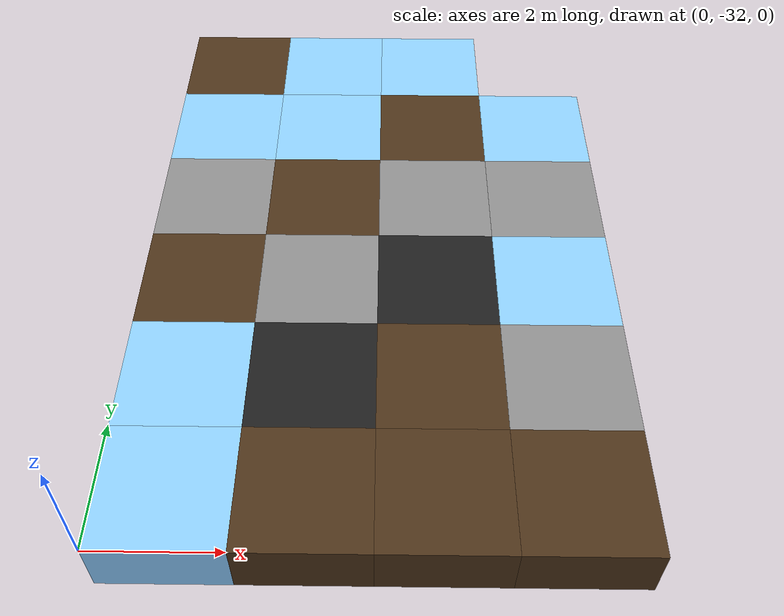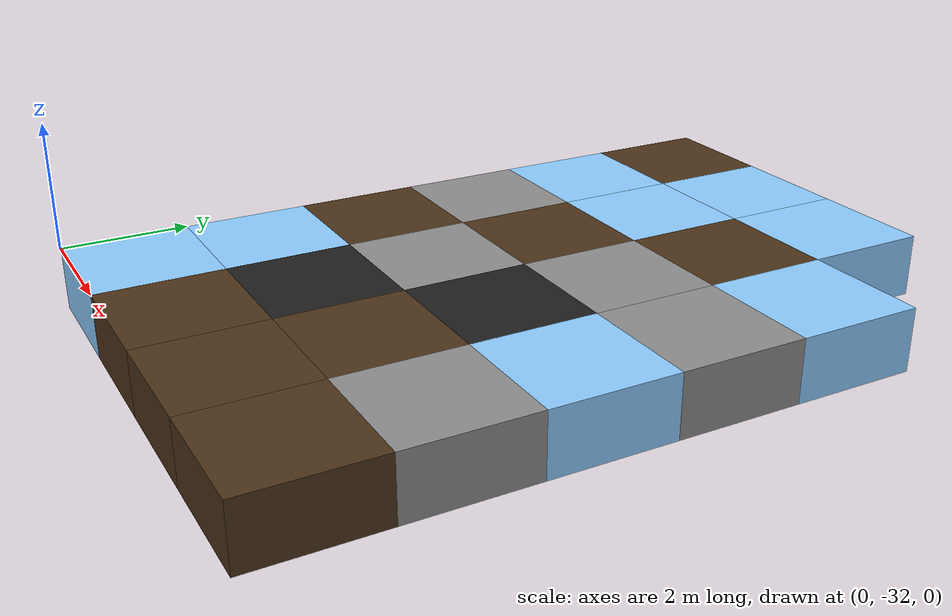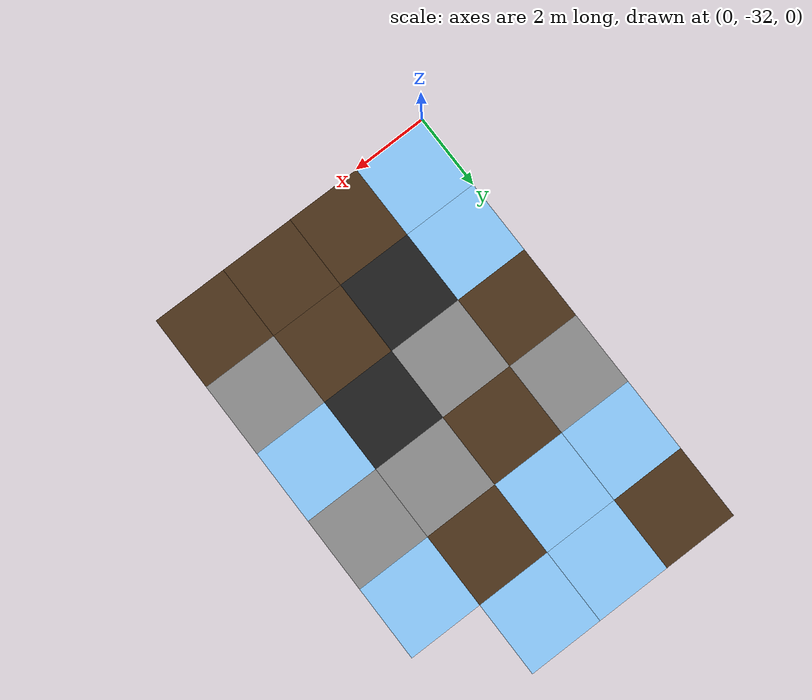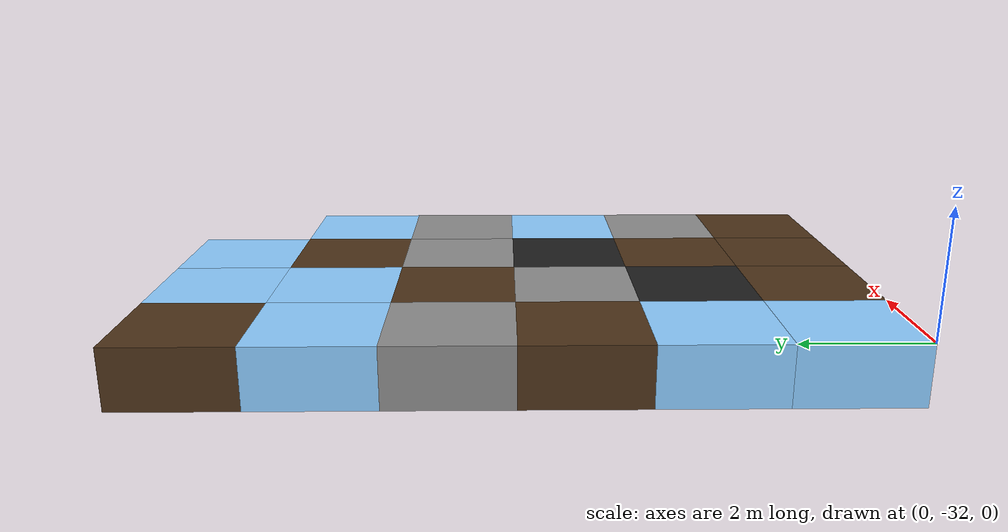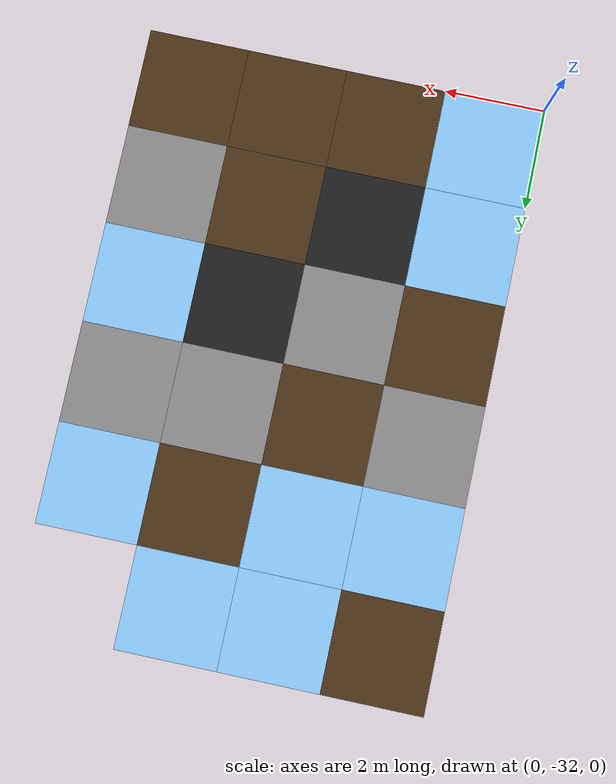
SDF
<sdf version="1.5">
 <world name="squares_example">
  <model name="tile_16_0">
   <static>true</static>
   <pose>1.000 -31.000 -0.500 0 0 0</pose>
   <link name="link">
    <collision name="col">
     <geometry><box><size>2.0 2.0 1.0</size></box></geometry>
     <surface>
      <friction>
       <ode><mu>0.03</mu><mu2>0.02</mu2><fdir1>1 0 0</fdir1><slip1>0.03</slip1><slip2>0.03</slip2></ode>
       <torsional>
        <coefficient>0.005</coefficient>
        <use_patch_radius>false</use_patch_radius>
        <surface_radius>0.12</surface_radius>
        <ode><slip>0.01</slip></ode>
       </torsional>
      </friction>
      <bounce><restitution_coefficient>0.0</restitution_coefficient><threshold>0.1</threshold></bounce>
      <contact>
       <ode><kp>10000000.0</kp><kd>1000.0</kd><max_vel>0.01</max_vel><min_depth>0.0</min_depth></ode>
      </contact>
     </surface>
    </collision>
    <visual name="visual">
     <geometry><box><size>2.0 2.0 1.0</size></box></geometry>
     <material>
      <diffuse>0.55 0.80 1.00 1</diffuse>
      <ambient>0 0 0 0</ambient>
      <specular>0 0 0 1</specular>
      <emissive>0 0 0 1</emissive>
     </material>
    </visual>
   </link>
  </model>
  <model name="tile_17_0">
   <static>true</static>
   <pose>3.000 -31.000 -0.500 0 0 0</pose>
   <link name="link">
    <collision name="col">
     <geometry><box><size>2.0 2.0 1.0</size></box></geometry>
     <surface>
      <friction>
       <ode><mu>0.6</mu><mu2>0.4</mu2><fdir1>1 0 0</fdir1><slip1>0.08</slip1><slip2>0.08</slip2></ode>
       <torsional>
        <coefficient>0.03</coefficient>
        <use_patch_radius>false</use_patch_radius>
        <surface_radius>0.12</surface_radius>
        <ode><slip>0.0</slip></ode>
       </torsional>
      </friction>
      <bounce><restitution_coefficient>0.0</restitution_coefficient><threshold>0.1</threshold></bounce>
      <contact>
       <ode><kp>1000000.0</kp><kd>10000.0</kd><max_vel>0.01</max_vel><min_depth>0.0</min_depth></ode>
      </contact>
     </surface>
    </collision>
    <visual name="visual">
     <geometry><box><size>2.0 2.0 1.0</size></box></geometry>
     <material>
      <diffuse>0.30 0.20 0.10 1</diffuse>
      <ambient>0 0 0 0</ambient>
      <specular>0 0 0 1</specular>
      <emissive>0 0 0 1</emissive>
     </material>
    </visual>
   </link>
  </model>
  <model name="tile_18_0">
   <static>true</static>
   <pose>5.000 -31.000 -0.500 0 0 0</pose>
   <link name="link">
    <collision name="col">
     <geometry><box><size>2.0 2.0 1.0</size></box></geometry>
     <surface>
      <friction>
       <ode><mu>0.6</mu><mu2>0.4</mu2><fdir1>1 0 0</fdir1><slip1>0.08</slip1><slip2>0.08</slip2></ode>
       <torsional>
        <coefficient>0.03</coefficient>
        <use_patch_radius>false</use_patch_radius>
        <surface_radius>0.12</surface_radius>
        <ode><slip>0.0</slip></ode>
       </torsional>
      </friction>
      <bounce><restitution_coefficient>0.0</restitution_coefficient><threshold>0.1</threshold></bounce>
      <contact>
       <ode><kp>1000000.0</kp><kd>10000.0</kd><max_vel>0.01</max_vel><min_depth>0.0</min_depth></ode>
      </contact>
     </surface>
    </collision>
    <visual name="visual">
     <geometry><box><size>2.0 2.0 1.0</size></box></geometry>
     <material>
      <diffuse>0.30 0.20 0.10 1</diffuse>
      <ambient>0 0 0 0</ambient>
      <specular>0 0 0 1</specular>
      <emissive>0 0 0 1</emissive>
     </material>
    </visual>
   </link>
  </model>
  <model name="tile_19_0">
   <static>true</static>
   <pose>7.000 -31.000 -0.500 0 0 0</pose>
   <link name="link">
    <collision name="col">
     <geometry><box><size>2.0 2.0 1.0</size></box></geometry>
     <surface>
      <friction>
       <ode><mu>0.6</mu><mu2>0.4</mu2><fdir1>1 0 0</fdir1><slip1>0.08</slip1><slip2>0.08</slip2></ode>
       <torsional>
        <coefficient>0.03</coefficient>
        <use_patch_radius>false</use_patch_radius>
        <surface_radius>0.12</surface_radius>
        <ode><slip>0.0</slip></ode>
       </torsional>
      </friction>
      <bounce><restitution_coefficient>0.0</restitution_coefficient><threshold>0.1</threshold></bounce>
      <contact>
       <ode><kp>1000000.0</kp><kd>10000.0</kd><max_vel>0.01</max_vel><min_depth>0.0</min_depth></ode>
      </contact>
     </surface>
    </collision>
    <visual name="visual">
     <geometry><box><size>2.0 2.0 1.0</size></box></geometry>
     <material>
      <diffuse>0.30 0.20 0.10 1</diffuse>
      <ambient>0 0 0 0</ambient>
      <specular>0 0 0 1</specular>
      <emissive>0 0 0 1</emissive>
     </material>
    </visual>
   </link>
  </model>
  <model name="tile_16_1">
   <static>true</static>
   <pose>1.000 -29.000 -0.500 0 0 0</pose>
   <link name="link">
    <collision name="col">
     <geometry><box><size>2.0 2.0 1.0</size></box></geometry>
     <surface>
      <friction>
       <ode><mu>0.03</mu><mu2>0.02</mu2><fdir1>1 0 0</fdir1><slip1>0.03</slip1><slip2>0.03</slip2></ode>
       <torsional>
        <coefficient>0.005</coefficient>
        <use_patch_radius>false</use_patch_radius>
        <surface_radius>0.12</surface_radius>
        <ode><slip>0.01</slip></ode>
       </torsional>
      </friction>
      <bounce><restitution_coefficient>0.0</restitution_coefficient><threshold>0.1</threshold></bounce>
      <contact>
       <ode><kp>10000000.0</kp><kd>1000.0</kd><max_vel>0.01</max_vel><min_depth>0.0</min_depth></ode>
      </contact>
     </surface>
    </collision>
    <visual name="visual">
     <geometry><box><size>2.0 2.0 1.0</size></box></geometry>
     <material>
      <diffuse>0.55 0.80 1.00 1</diffuse>
      <ambient>0 0 0 0</ambient>
      <specular>0 0 0 1</specular>
      <emissive>0 0 0 1</emissive>
     </material>
    </visual>
   </link>
  </model>
  <model name="tile_17_1">
   <static>true</static>
   <pose>3.000 -29.000 -0.500 0 0 0</pose>
   <link name="link">
    <collision name="col">
     <geometry><box><size>2.0 2.0 1.0</size></box></geometry>
     <surface>
      <friction>
       <ode><mu>0.4</mu><mu2>0.15</mu2><fdir1>1 0 0</fdir1><slip1>0.0</slip1><slip2>0.0</slip2></ode>
       <torsional>
        <coefficient>0.03</coefficient>
        <use_patch_radius>false</use_patch_radius>
        <surface_radius>0.12</surface_radius>
        <ode><slip>0.0</slip></ode>
       </torsional>
      </friction>
      <bounce><restitution_coefficient>0.0</restitution_coefficient><threshold>0.1</threshold></bounce>
      <contact>
       <ode><kp>1000000000.0</kp><kd>1000000.0</kd><max_vel>0.01</max_vel><min_depth>0.0</min_depth></ode>
      </contact>
     </surface>
    </collision>
    <visual name="visual">
     <geometry><box><size>2.0 2.0 1.0</size></box></geometry>
     <material>
      <diffuse>0.12 0.12 0.12 1</diffuse>
      <ambient>0 0 0 0</ambient>
      <specular>0 0 0 1</specular>
      <emissive>0 0 0 1</emissive>
     </material>
    </visual>
   </link>
  </model>
  <model name="tile_18_1">
   <static>true</static>
   <pose>5.000 -29.000 -0.500 0 0 0</pose>
   <link name="link">
    <collision name="col">
     <geometry><box><size>2.0 2.0 1.0</size></box></geometry>
     <surface>
      <friction>
       <ode><mu>0.6</mu><mu2>0.4</mu2><fdir1>1 0 0</fdir1><slip1>0.08</slip1><slip2>0.08</slip2></ode>
       <torsional>
        <coefficient>0.03</coefficient>
        <use_patch_radius>false</use_patch_radius>
        <surface_radius>0.12</surface_radius>
        <ode><slip>0.0</slip></ode>
       </torsional>
      </friction>
      <bounce><restitution_coefficient>0.0</restitution_coefficient><threshold>0.1</threshold></bounce>
      <contact>
       <ode><kp>1000000.0</kp><kd>10000.0</kd><max_vel>0.01</max_vel><min_depth>0.0</min_depth></ode>
      </contact>
     </surface>
    </collision>
    <visual name="visual">
     <geometry><box><size>2.0 2.0 1.0</size></box></geometry>
     <material>
      <diffuse>0.30 0.20 0.10 1</diffuse>
      <ambient>0 0 0 0</ambient>
      <specular>0 0 0 1</specular>
      <emissive>0 0 0 1</emissive>
     </material>
    </visual>
   </link>
  </model>
  <model name="tile_19_1">
   <static>true</static>
   <pose>7.000 -29.000 -0.500 0 0 0</pose>
   <link name="link">
    <collision name="col">
     <geometry><box><size>2.0 2.0 1.0</size></box></geometry>
     <surface>
      <friction>
       <ode><mu>0.8</mu><mu2>0.3</mu2><fdir1>1 0 0</fdir1><slip1>0.0</slip1><slip2>0.0</slip2></ode>
       <torsional>
        <coefficient>0.03</coefficient>
        <use_patch_radius>false</use_patch_radius>
        <surface_radius>0.12</surface_radius>
        <ode><slip>0.0</slip></ode>
       </torsional>
      </friction>
      <bounce><restitution_coefficient>0.0</restitution_coefficient><threshold>0.1</threshold></bounce>
      <contact>
       <ode><kp>10000000000.0</kp><kd>10000000.0</kd><max_vel>0.01</max_vel><min_depth>0.0</min_depth></ode>
      </contact>
     </surface>
    </collision>
    <visual name="visual">
     <geometry><box><size>2.0 2.0 1.0</size></box></geometry>
     <material>
      <diffuse>0.55 0.55 0.55 1</diffuse>
      <ambient>0 0 0 0</ambient>
      <specular>0 0 0 1</specular>
      <emissive>0 0 0 1</emissive>
     </material>
    </visual>
   </link>
  </model>
  <model name="tile_16_2">
   <static>true</static>
   <pose>1.000 -27.000 -0.500 0 0 0</pose>
   <link name="link">
    <collision name="col">
     <geometry><box><size>2.0 2.0 1.0</size></box></geometry>
     <surface>
      <friction>
       <ode><mu>0.6</mu><mu2>0.4</mu2><fdir1>1 0 0</fdir1><slip1>0.08</slip1><slip2>0.08</slip2></ode>
       <torsional>
        <coefficient>0.03</coefficient>
        <use_patch_radius>false</use_patch_radius>
        <surface_radius>0.12</surface_radius>
        <ode><slip>0.0</slip></ode>
       </torsional>
      </friction>
      <bounce><restitution_coefficient>0.0</restitution_coefficient><threshold>0.1</threshold></bounce>
      <contact>
       <ode><kp>1000000.0</kp><kd>10000.0</kd><max_vel>0.01</max_vel><min_depth>0.0</min_depth></ode>
      </contact>
     </surface>
    </collision>
    <visual name="visual">
     <geometry><box><size>2.0 2.0 1.0</size></box></geometry>
     <material>
      <diffuse>0.30 0.20 0.10 1</diffuse>
      <ambient>0 0 0 0</ambient>
      <specular>0 0 0 1</specular>
      <emissive>0 0 0 1</emissive>
     </material>
    </visual>
   </link>
  </model>
  <model name="tile_17_2">
   <static>true</static>
   <pose>3.000 -27.000 -0.500 0 0 0</pose>
   <link name="link">
    <collision name="col">
     <geometry><box><size>2.0 2.0 1.0</size></box></geometry>
     <surface>
      <friction>
       <ode><mu>0.8</mu><mu2>0.3</mu2><fdir1>1 0 0</fdir1><slip1>0.0</slip1><slip2>0.0</slip2></ode>
       <torsional>
        <coefficient>0.03</coefficient>
        <use_patch_radius>false</use_patch_radius>
        <surface_radius>0.12</surface_radius>
        <ode><slip>0.0</slip></ode>
       </torsional>
      </friction>
      <bounce><restitution_coefficient>0.0</restitution_coefficient><threshold>0.1</threshold></bounce>
      <contact>
       <ode><kp>10000000000.0</kp><kd>10000000.0</kd><max_vel>0.01</max_vel><min_depth>0.0</min_depth></ode>
      </contact>
     </surface>
    </collision>
    <visual name="visual">
     <geometry><box><size>2.0 2.0 1.0</size></box></geometry>
     <material>
      <diffuse>0.55 0.55 0.55 1</diffuse>
      <ambient>0 0 0 0</ambient>
      <specular>0 0 0 1</specular>
      <emissive>0 0 0 1</emissive>
     </material>
    </visual>
   </link>
  </model>
  <model name="tile_18_2">
   <static>true</static>
   <pose>5.000 -27.000 -0.500 0 0 0</pose>
   <link name="link">
    <collision name="col">
     <geometry><box><size>2.0 2.0 1.0</size></box></geometry>
     <surface>
      <friction>
       <ode><mu>0.4</mu><mu2>0.15</mu2><fdir1>1 0 0</fdir1><slip1>0.0</slip1><slip2>0.0</slip2></ode>
       <torsional>
        <coefficient>0.03</coefficient>
        <use_patch_radius>false</use_patch_radius>
        <surface_radius>0.12</surface_radius>
        <ode><slip>0.0</slip></ode>
       </torsional>
      </friction>
      <bounce><restitution_coefficient>0.0</restitution_coefficient><threshold>0.1</threshold></bounce>
      <contact>
       <ode><kp>1000000000.0</kp><kd>1000000.0</kd><max_vel>0.01</max_vel><min_depth>0.0</min_depth></ode>
      </contact>
     </surface>
    </collision>
    <visual name="visual">
     <geometry><box><size>2.0 2.0 1.0</size></box></geometry>
     <material>
      <diffuse>0.12 0.12 0.12 1</diffuse>
      <ambient>0 0 0 0</ambient>
      <specular>0 0 0 1</specular>
      <emissive>0 0 0 1</emissive>
     </material>
    </visual>
   </link>
  </model>
  <model name="tile_19_2">
   <static>true</static>
   <pose>7.000 -27.000 -0.500 0 0 0</pose>
   <link name="link">
    <collision name="col">
     <geometry><box><size>2.0 2.0 1.0</size></box></geometry>
     <surface>
      <friction>
       <ode><mu>0.03</mu><mu2>0.02</mu2><fdir1>1 0 0</fdir1><slip1>0.03</slip1><slip2>0.03</slip2></ode>
       <torsional>
        <coefficient>0.005</coefficient>
        <use_patch_radius>false</use_patch_radius>
        <surface_radius>0.12</surface_radius>
        <ode><slip>0.01</slip></ode>
       </torsional>
      </friction>
      <bounce><restitution_coefficient>0.0</restitution_coefficient><threshold>0.1</threshold></bounce>
      <contact>
       <ode><kp>10000000.0</kp><kd>1000.0</kd><max_vel>0.01</max_vel><min_depth>0.0</min_depth></ode>
      </contact>
     </surface>
    </collision>
    <visual name="visual">
     <geometry><box><size>2.0 2.0 1.0</size></box></geometry>
     <material>
      <diffuse>0.55 0.80 1.00 1</diffuse>
      <ambient>0 0 0 0</ambient>
      <specular>0 0 0 1</specular>
      <emissive>0 0 0 1</emissive>
     </material>
    </visual>
   </link>
  </model>
  <model name="tile_16_3">
   <static>true</static>
   <pose>1.000 -25.000 -0.500 0 0 0</pose>
   <link name="link">
    <collision name="col">
     <geometry><box><size>2.0 2.0 1.0</size></box></geometry>
     <surface>
      <friction>
       <ode><mu>0.8</mu><mu2>0.3</mu2><fdir1>1 0 0</fdir1><slip1>0.0</slip1><slip2>0.0</slip2></ode>
       <torsional>
        <coefficient>0.03</coefficient>
        <use_patch_radius>false</use_patch_radius>
        <surface_radius>0.12</surface_radius>
        <ode><slip>0.0</slip></ode>
       </torsional>
      </friction>
      <bounce><restitution_coefficient>0.0</restitution_coefficient><threshold>0.1</threshold></bounce>
      <contact>
       <ode><kp>10000000000.0</kp><kd>10000000.0</kd><max_vel>0.01</max_vel><min_depth>0.0</min_depth></ode>
      </contact>
     </surface>
    </collision>
    <visual name="visual">
     <geometry><box><size>2.0 2.0 1.0</size></box></geometry>
     <material>
      <diffuse>0.55 0.55 0.55 1</diffuse>
      <ambient>0 0 0 0</ambient>
      <specular>0 0 0 1</specular>
      <emissive>0 0 0 1</emissive>
     </material>
    </visual>
   </link>
  </model>
  <model name="tile_17_3">
   <static>true</static>
   <pose>3.000 -25.000 -0.500 0 0 0</pose>
   <link name="link">
    <collision name="col">
     <geometry><box><size>2.0 2.0 1.0</size></box></geometry>
     <surface>
      <friction>
       <ode><mu>0.6</mu><mu2>0.4</mu2><fdir1>1 0 0</fdir1><slip1>0.08</slip1><slip2>0.08</slip2></ode>
       <torsional>
        <coefficient>0.03</coefficient>
        <use_patch_radius>false</use_patch_radius>
        <surface_radius>0.12</surface_radius>
        <ode><slip>0.0</slip></ode>
       </torsional>
      </friction>
      <bounce><restitution_coefficient>0.0</restitution_coefficient><threshold>0.1</threshold></bounce>
      <contact>
       <ode><kp>1000000.0</kp><kd>10000.0</kd><max_vel>0.01</max_vel><min_depth>0.0</min_depth></ode>
      </contact>
     </surface>
    </collision>
    <visual name="visual">
     <geometry><box><size>2.0 2.0 1.0</size></box></geometry>
     <material>
      <diffuse>0.30 0.20 0.10 1</diffuse>
      <ambient>0 0 0 0</ambient>
      <specular>0 0 0 1</specular>
      <emissive>0 0 0 1</emissive>
     </material>
    </visual>
   </link>
  </model>
  <model name="tile_18_3">
   <static>true</static>
   <pose>5.000 -25.000 -0.500 0 0 0</pose>
   <link name="link">
    <collision name="col">
     <geometry><box><size>2.0 2.0 1.0</size></box></geometry>
     <surface>
      <friction>
       <ode><mu>0.8</mu><mu2>0.3</mu2><fdir1>1 0 0</fdir1><slip1>0.0</slip1><slip2>0.0</slip2></ode>
       <torsional>
        <coefficient>0.03</coefficient>
        <use_patch_radius>false</use_patch_radius>
        <surface_radius>0.12</surface_radius>
        <ode><slip>0.0</slip></ode>
       </torsional>
      </friction>
      <bounce><restitution_coefficient>0.0</restitution_coefficient><threshold>0.1</threshold></bounce>
      <contact>
       <ode><kp>10000000000.0</kp><kd>10000000.0</kd><max_vel>0.01</max_vel><min_depth>0.0</min_depth></ode>
      </contact>
     </surface>
    </collision>
    <visual name="visual">
     <geometry><box><size>2.0 2.0 1.0</size></box></geometry>
     <material>
      <diffuse>0.55 0.55 0.55 1</diffuse>
      <ambient>0 0 0 0</ambient>
      <specular>0 0 0 1</specular>
      <emissive>0 0 0 1</emissive>
     </material>
    </visual>
   </link>
  </model>
  <model name="tile_19_3">
   <static>true</static>
   <pose>7.000 -25.000 -0.500 0 0 0</pose>
   <link name="link">
    <collision name="col">
     <geometry><box><size>2.0 2.0 1.0</size></box></geometry>
     <surface>
      <friction>
       <ode><mu>0.8</mu><mu2>0.3</mu2><fdir1>1 0 0</fdir1><slip1>0.0</slip1><slip2>0.0</slip2></ode>
       <torsional>
        <coefficient>0.03</coefficient>
        <use_patch_radius>false</use_patch_radius>
        <surface_radius>0.12</surface_radius>
        <ode><slip>0.0</slip></ode>
       </torsional>
      </friction>
      <bounce><restitution_coefficient>0.0</restitution_coefficient><threshold>0.1</threshold></bounce>
      <contact>
       <ode><kp>10000000000.0</kp><kd>10000000.0</kd><max_vel>0.01</max_vel><min_depth>0.0</min_depth></ode>
      </contact>
     </surface>
    </collision>
    <visual name="visual">
     <geometry><box><size>2.0 2.0 1.0</size></box></geometry>
     <material>
      <diffuse>0.55 0.55 0.55 1</diffuse>
      <ambient>0 0 0 0</ambient>
      <specular>0 0 0 1</specular>
      <emissive>0 0 0 1</emissive>
     </material>
    </visual>
   </link>
  </model>
  <model name="tile_16_4">
   <static>true</static>
   <pose>1.000 -23.000 -0.500 0 0 0</pose>
   <link name="link">
    <collision name="col">
     <geometry><box><size>2.0 2.0 1.0</size></box></geometry>
     <surface>
      <friction>
       <ode><mu>0.03</mu><mu2>0.02</mu2><fdir1>1 0 0</fdir1><slip1>0.03</slip1><slip2>0.03</slip2></ode>
       <torsional>
        <coefficient>0.005</coefficient>
        <use_patch_radius>false</use_patch_radius>
        <surface_radius>0.12</surface_radius>
        <ode><slip>0.01</slip></ode>
       </torsional>
      </friction>
      <bounce><restitution_coefficient>0.0</restitution_coefficient><threshold>0.1</threshold></bounce>
      <contact>
       <ode><kp>10000000.0</kp><kd>1000.0</kd><max_vel>0.01</max_vel><min_depth>0.0</min_depth></ode>
      </contact>
     </surface>
    </collision>
    <visual name="visual">
     <geometry><box><size>2.0 2.0 1.0</size></box></geometry>
     <material>
      <diffuse>0.55 0.80 1.00 1</diffuse>
      <ambient>0 0 0 0</ambient>
      <specular>0 0 0 1</specular>
      <emissive>0 0 0 1</emissive>
     </material>
    </visual>
   </link>
  </model>
  <model name="tile_17_4">
   <static>true</static>
   <pose>3.000 -23.000 -0.500 0 0 0</pose>
   <link name="link">
    <collision name="col">
     <geometry><box><size>2.0 2.0 1.0</size></box></geometry>
     <surface>
      <friction>
       <ode><mu>0.03</mu><mu2>0.02</mu2><fdir1>1 0 0</fdir1><slip1>0.03</slip1><slip2>0.03</slip2></ode>
       <torsional>
        <coefficient>0.005</coefficient>
        <use_patch_radius>false</use_patch_radius>
        <surface_radius>0.12</surface_radius>
        <ode><slip>0.01</slip></ode>
       </torsional>
      </friction>
      <bounce><restitution_coefficient>0.0</restitution_coefficient><threshold>0.1</threshold></bounce>
      <contact>
       <ode><kp>10000000.0</kp><kd>1000.0</kd><max_vel>0.01</max_vel><min_depth>0.0</min_depth></ode>
      </contact>
     </surface>
    </collision>
    <visual name="visual">
     <geometry><box><size>2.0 2.0 1.0</size></box></geometry>
     <material>
      <diffuse>0.55 0.80 1.00 1</diffuse>
      <ambient>0 0 0 0</ambient>
      <specular>0 0 0 1</specular>
      <emissive>0 0 0 1</emissive>
     </material>
    </visual>
   </link>
  </model>
  <model name="tile_18_4">
   <static>true</static>
   <pose>5.000 -23.000 -0.500 0 0 0</pose>
   <link name="link">
    <collision name="col">
     <geometry><box><size>2.0 2.0 1.0</size></box></geometry>
     <surface>
      <friction>
       <ode><mu>0.6</mu><mu2>0.4</mu2><fdir1>1 0 0</fdir1><slip1>0.08</slip1><slip2>0.08</slip2></ode>
       <torsional>
        <coefficient>0.03</coefficient>
        <use_patch_radius>false</use_patch_radius>
        <surface_radius>0.12</surface_radius>
        <ode><slip>0.0</slip></ode>
       </torsional>
      </friction>
      <bounce><restitution_coefficient>0.0</restitution_coefficient><threshold>0.1</threshold></bounce>
      <contact>
       <ode><kp>1000000.0</kp><kd>10000.0</kd><max_vel>0.01</max_vel><min_depth>0.0</min_depth></ode>
      </contact>
     </surface>
    </collision>
    <visual name="visual">
     <geometry><box><size>2.0 2.0 1.0</size></box></geometry>
     <material>
      <diffuse>0.30 0.20 0.10 1</diffuse>
      <ambient>0 0 0 0</ambient>
      <specular>0 0 0 1</specular>
      <emissive>0 0 0 1</emissive>
     </material>
    </visual>
   </link>
  </model>
  <model name="tile_19_4">
   <static>true</static>
   <pose>7.000 -23.000 -0.500 0 0 0</pose>
   <link name="link">
    <collision name="col">
     <geometry><box><size>2.0 2.0 1.0</size></box></geometry>
     <surface>
      <friction>
       <ode><mu>0.03</mu><mu2>0.02</mu2><fdir1>1 0 0</fdir1><slip1>0.03</slip1><slip2>0.03</slip2></ode>
       <torsional>
        <coefficient>0.005</coefficient>
        <use_patch_radius>false</use_patch_radius>
        <surface_radius>0.12</surface_radius>
        <ode><slip>0.01</slip></ode>
       </torsional>
      </friction>
      <bounce><restitution_coefficient>0.0</restitution_coefficient><threshold>0.1</threshold></bounce>
      <contact>
       <ode><kp>10000000.0</kp><kd>1000.0</kd><max_vel>0.01</max_vel><min_depth>0.0</min_depth></ode>
      </contact>
     </surface>
    </collision>
    <visual name="visual">
     <geometry><box><size>2.0 2.0 1.0</size></box></geometry>
     <material>
      <diffuse>0.55 0.80 1.00 1</diffuse>
      <ambient>0 0 0 0</ambient>
      <specular>0 0 0 1</specular>
      <emissive>0 0 0 1</emissive>
     </material>
    </visual>
   </link>
  </model>
  <model name="tile_16_5">
   <static>true</static>
   <pose>1.000 -21.000 -0.500 0 0 0</pose>
   <link name="link">
    <collision name="col">
     <geometry><box><size>2.0 2.0 1.0</size></box></geometry>
     <surface>
      <friction>
       <ode><mu>0.6</mu><mu2>0.4</mu2><fdir1>1 0 0</fdir1><slip1>0.08</slip1><slip2>0.08</slip2></ode>
       <torsional>
        <coefficient>0.03</coefficient>
        <use_patch_radius>false</use_patch_radius>
        <surface_radius>0.12</surface_radius>
        <ode><slip>0.0</slip></ode>
       </torsional>
      </friction>
      <bounce><restitution_coefficient>0.0</restitution_coefficient><threshold>0.1</threshold></bounce>
      <contact>
       <ode><kp>1000000.0</kp><kd>10000.0</kd><max_vel>0.01</max_vel><min_depth>0.0</min_depth></ode>
      </contact>
     </surface>
    </collision>
    <visual name="visual">
     <geometry><box><size>2.0 2.0 1.0</size></box></geometry>
     <material>
      <diffuse>0.30 0.20 0.10 1</diffuse>
      <ambient>0 0 0 0</ambient>
      <specular>0 0 0 1</specular>
      <emissive>0 0 0 1</emissive>
     </material>
    </visual>
   </link>
  </model>
  <model name="tile_17_5">
   <static>true</static>
   <pose>3.000 -21.000 -0.500 0 0 0</pose>
   <link name="link">
    <collision name="col">
     <geometry><box><size>2.0 2.0 1.0</size></box></geometry>
     <surface>
      <friction>
       <ode><mu>0.03</mu><mu2>0.02</mu2><fdir1>1 0 0</fdir1><slip1>0.03</slip1><slip2>0.03</slip2></ode>
       <torsional>
        <coefficient>0.005</coefficient>
        <use_patch_radius>false</use_patch_radius>
        <surface_radius>0.12</surface_radius>
        <ode><slip>0.01</slip></ode>
       </torsional>
      </friction>
      <bounce><restitution_coefficient>0.0</restitution_coefficient><threshold>0.1</threshold></bounce>
      <contact>
       <ode><kp>10000000.0</kp><kd>1000.0</kd><max_vel>0.01</max_vel><min_depth>0.0</min_depth></ode>
      </contact>
     </surface>
    </collision>
    <visual name="visual">
     <geometry><box><size>2.0 2.0 1.0</size></box></geometry>
     <material>
      <diffuse>0.55 0.80 1.00 1</diffuse>
      <ambient>0 0 0 0</ambient>
      <specular>0 0 0 1</specular>
      <emissive>0 0 0 1</emissive>
     </material>
    </visual>
   </link>
  </model>
  <model name="tile_18_5">
   <static>true</static>
   <pose>5.000 -21.000 -0.500 0 0 0</pose>
   <link name="link">
    <collision name="col">
     <geometry><box><size>2.0 2.0 1.0</size></box></geometry>
     <surface>
      <friction>
       <ode><mu>0.03</mu><mu2>0.02</mu2><fdir1>1 0 0</fdir1><slip1>0.03</slip1><slip2>0.03</slip2></ode>
       <torsional>
        <coefficient>0.005</coefficient>
        <use_patch_radius>false</use_patch_radius>
        <surface_radius>0.12</surface_radius>
        <ode><slip>0.01</slip></ode>
       </torsional>
      </friction>
      <bounce><restitution_coefficient>0.0</restitution_coefficient><threshold>0.1</threshold></bounce>
      <contact>
       <ode><kp>10000000.0</kp><kd>1000.0</kd><max_vel>0.01</max_vel><min_depth>0.0</min_depth></ode>
      </contact>
     </surface>
    </collision>
    <visual name="visual">
     <geometry><box><size>2.0 2.0 1.0</size></box></geometry>
     <material>
      <diffuse>0.55 0.80 1.00 1</diffuse>
      <ambient>0 0 0 0</ambient>
      <specular>0 0 0 1</specular>
      <emissive>0 0 0 1</emissive>
     </material>
    </visual>
   </link>
  </model>
 </world>
</sdf>
